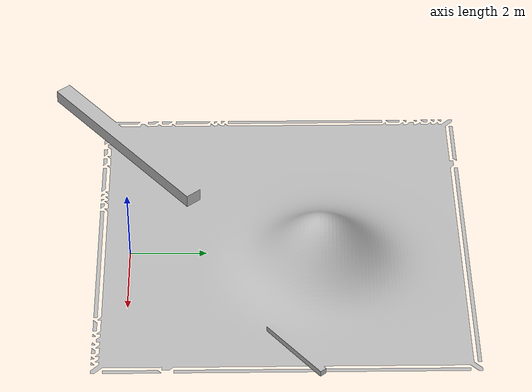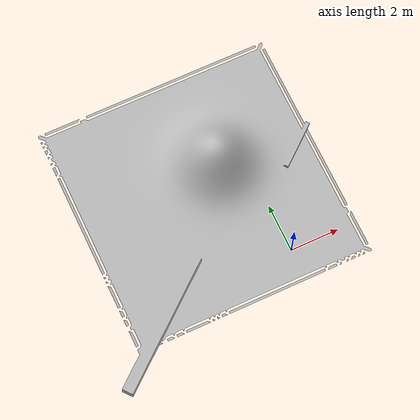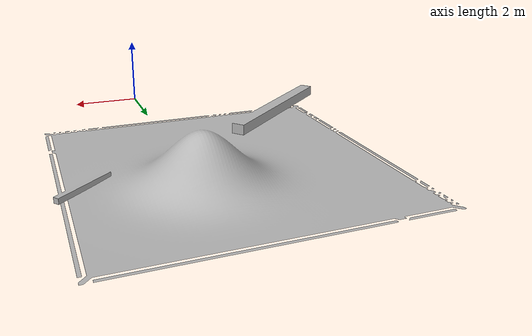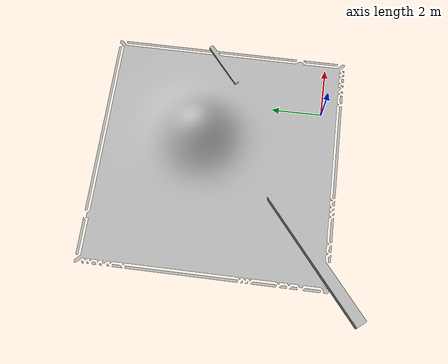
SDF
<sdf version="1.7">
 <world name="default">
  <light name="sun" type="directional">
   <pose>0 0 10 0 -0 0</pose>
   <diffuse>0.8 0.8 0.8 1</diffuse>
   <specular>0.2 0.2 0.2 1</specular>
   <attenuation>
    <range>1000</range>
    <constant>0.9</constant>
    <linear>0.01</linear>
    <quadratic>0.001</quadratic>
   </attenuation>
   <direction>-0.5 0.1 -0.9</direction>
   <spot><inner_angle>0</inner_angle><outer_angle>0</outer_angle><falloff>0</falloff></spot>
  </light>
  <model name="ground_plane"><static>1</static><link name="link"/></model>
  <model name="my_mesh">
   <pose>2 0 -1  0 0 0</pose>
   <static>true</static>
   <link name="body">
    <visual name="visual">
     <geometry>
      <mesh><uri>file:///home/moog-2/nav2_ws/src/nav2_dev/sambot_description/world/landscape_mound.dae</uri></mesh>
     </geometry>
    </visual>
    <collision name="collision">
     <geometry>
      <mesh><uri>file:///home/moog-2/nav2_ws/src/nav2_dev/sambot_description/world/landscape_mound.dae</uri></mesh>
     </geometry>
     <surface><friction><ode><mu>0.9</mu><mu2>0.7</mu2></ode></friction></surface>
    </collision>
   </link>
  </model>
  <gravity>0 0 -9.8</gravity>
  <magnetic_field>6e-06 2.3e-05 -4.2e-05</magnetic_field>
  <atmosphere type="adiabatic"/>
  <physics type="ode">
   <max_step_size>0.001</max_step_size>
   <real_time_factor>1</real_time_factor>
   <real_time_update_rate>1000</real_time_update_rate>
  </physics>
  <scene><ambient>0.4 0.4 0.4 1</ambient><background>0.7 0.7 0.7 1</background><shadows>1</shadows></scene>
  <spherical_coordinates>
   <surface_model>EARTH_WGS84</surface_model>
   <latitude_deg>0</latitude_deg>
   <longitude_deg>0</longitude_deg>
   <elevation>0</elevation>
   <heading_deg>0</heading_deg>
  </spherical_coordinates>
 </world>
</sdf>
